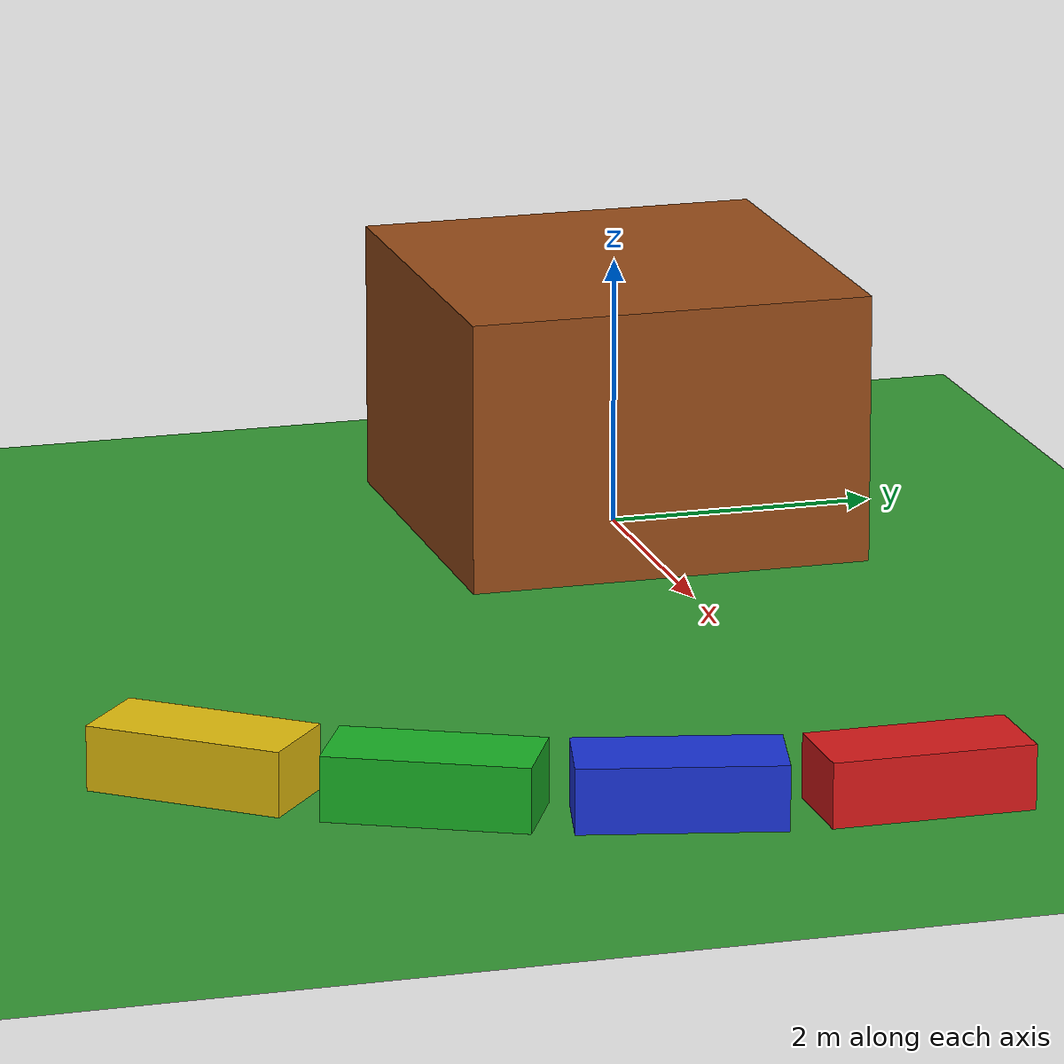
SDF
<?xml version="1.0" ?>
<sdf version="1.6">
  <world name="train_world">
    <physics name="1ms" type="ignored"><max_step_size>0.001</max_step_size><real_time_factor>1.0</real_time_factor></physics>
    <plugin filename="gz-sim-physics-system" name="gz::sim::systems::Physics"/>
    <plugin filename="gz-sim-user-commands-system" name="gz::sim::systems::UserCommands"/>
    <plugin filename="gz-sim-scene-broadcaster-system" name="gz::sim::systems::SceneBroadcaster"/>
    <light type="directional" name="sun"><cast_shadows>true</cast_shadows><pose>0 0 10 0 0 0</pose><diffuse>1 1 1 1</diffuse><specular>0.5 0.5 0.5 1</specular><direction>-0.5 0.1 -0.9</direction></light>
    <model name="ground"><static>true</static><link name="link">
      <collision name="collision"><geometry><plane><normal>0 0 1</normal><size>100 100</size></plane></geometry></collision>
      <visual name="visual"><geometry><plane><normal>0 0 1</normal><size>100 100</size></plane></geometry><material><ambient>0.2 0.6 0.2 1</ambient><diffuse>0.2 0.6 0.2 1</diffuse></material></visual>
    </link></model>
    <model name="center_block"><static>true</static><pose>0 0 1 0 0 0</pose><link name="link">
      <visual name="visual"><geometry><box><size>3 3 2</size></box></geometry><material><ambient>0.6 0.3 0.1 1</ambient><diffuse>0.6 0.3 0.1 1</diffuse></material></visual>
      <collision name="collision"><geometry><box><size>3 3 2</size></box></geometry></collision>
    </link></model>
    <model name="train">
      <pose>0 0 0 0 0 0</pose>
      <link name="locomotive">
        <pose>7.0000 -0.0000 0.3 0 0 1.5708</pose>
        <inertial><mass>5.0</mass><inertia><ixx>0.5</ixx><ixy>0</ixy><ixz>0</ixz><iyy>1.0</iyy><iyz>0</iyz><izz>1.0</izz></inertia></inertial>
        <collision name="col_locomotive"><geometry><box><size>1.4 0.65 0.45</size></box></geometry></collision>
        <visual name="vis_locomotive"><geometry><box><size>1.4 0.65 0.45</size></box></geometry><material><ambient>0.85 0.1 0.1 1</ambient><diffuse>0.85 0.1 0.1 1</diffuse></material></visual>
      </link>
      <link name="wagon1">
        <pose>6.8179 -1.5861 0.3 0 0 1.3422</pose>
        <inertial><mass>5.0</mass><inertia><ixx>0.5</ixx><ixy>0</ixy><ixz>0</ixz><iyy>1.0</iyy><iyz>0</iyz><izz>1.0</izz></inertia></inertial>
        <collision name="col_wagon1"><geometry><box><size>1.4 0.65 0.45</size></box></geometry></collision>
        <visual name="vis_wagon1"><geometry><box><size>1.4 0.65 0.45</size></box></geometry><material><ambient>0.1 0.2 0.85 1</ambient><diffuse>0.1 0.2 0.85 1</diffuse></material></visual>
      </link>
      <link name="wagon2">
        <pose>6.2812 -3.0897 0.3 0 0 1.1137</pose>
        <inertial><mass>5.0</mass><inertia><ixx>0.5</ixx><ixy>0</ixy><ixz>0</ixz><iyy>1.0</iyy><iyz>0</iyz><izz>1.0</izz></inertia></inertial>
        <collision name="col_wagon2"><geometry><box><size>1.4 0.65 0.45</size></box></geometry></collision>
        <visual name="vis_wagon2"><geometry><box><size>1.4 0.65 0.45</size></box></geometry><material><ambient>0.1 0.7 0.15 1</ambient><diffuse>0.1 0.7 0.15 1</diffuse></material></visual>
      </link>
      <link name="wagon3">
        <pose>5.4178 -4.4326 0.3 0 0 0.8851</pose>
        <inertial><mass>5.0</mass><inertia><ixx>0.5</ixx><ixy>0</ixy><ixz>0</ixz><iyy>1.0</iyy><iyz>0</iyz><izz>1.0</izz></inertia></inertial>
        <collision name="col_wagon3"><geometry><box><size>1.4 0.65 0.45</size></box></geometry></collision>
        <visual name="vis_wagon3"><geometry><box><size>1.4 0.65 0.45</size></box></geometry><material><ambient>0.9 0.75 0.05 1</ambient><diffuse>0.9 0.75 0.05 1</diffuse></material></visual>
      </link>
      <joint name="joint_locomotive_wagon1" type="fixed"><parent>locomotive</parent><child>wagon1</child></joint>
      <joint name="joint_wagon1_wagon2" type="fixed"><parent>wagon1</parent><child>wagon2</child></joint>
      <joint name="joint_wagon2_wagon3" type="fixed"><parent>wagon2</parent><child>wagon3</child></joint>
      <plugin filename="gz-sim-trajectory-follower-system" name="gz::sim::systems::TrajectoryFollower">
        <link_name>locomotive</link_name>
        <loop>true</loop>
        <force>800</force>
        <torque>800</torque>
        <range_accuracy>0.3</range_accuracy>
        <bearing_accuracy>0.05</bearing_accuracy>
        <waypoints>
          <waypoint>7.0000 0.0000</waypoint>
          <waypoint>6.9784 0.5492</waypoint>
          <waypoint>6.9138 1.0950</waypoint>
          <waypoint>6.8066 1.6341</waypoint>
          <waypoint>6.6574 2.1631</waypoint>
          <waypoint>6.4672 2.6788</waypoint>
          <waypoint>6.2370 3.1779</waypoint>
          <waypoint>5.9685 3.6575</waypoint>
          <waypoint>5.6631 4.1145</waypoint>
          <waypoint>5.3228 4.5461</waypoint>
          <waypoint>4.9497 4.9497</waypoint>
          <waypoint>4.5461 5.3228</waypoint>
          <waypoint>4.1145 5.6631</waypoint>
          <waypoint>3.6575 5.9685</waypoint>
          <waypoint>3.1779 6.2370</waypoint>
          <waypoint>2.6788 6.4672</waypoint>
          <waypoint>2.1631 6.6574</waypoint>
          <waypoint>1.6341 6.8066</waypoint>
          <waypoint>1.0950 6.9138</waypoint>
          <waypoint>0.5492 6.9784</waypoint>
          <waypoint>0.0000 7.0000</waypoint>
          <waypoint>-0.5492 6.9784</waypoint>
          <waypoint>-1.0950 6.9138</waypoint>
          <waypoint>-1.6341 6.8066</waypoint>
          <waypoint>-2.1631 6.6574</waypoint>
          <waypoint>-2.6788 6.4672</waypoint>
          <waypoint>-3.1779 6.2370</waypoint>
          <waypoint>-3.6575 5.9685</waypoint>
          <waypoint>-4.1145 5.6631</waypoint>
          <waypoint>-4.5461 5.3228</waypoint>
          <waypoint>-4.9497 4.9497</waypoint>
          <waypoint>-5.3228 4.5461</waypoint>
          <waypoint>-5.6631 4.1145</waypoint>
          <waypoint>-5.9685 3.6575</waypoint>
          <waypoint>-6.2370 3.1779</waypoint>
          <waypoint>-6.4672 2.6788</waypoint>
          <waypoint>-6.6574 2.1631</waypoint>
          <waypoint>-6.8066 1.6341</waypoint>
          <waypoint>-6.9138 1.0950</waypoint>
          <waypoint>-6.9784 0.5492</waypoint>
          <waypoint>-7.0000 0.0000</waypoint>
          <waypoint>-6.9784 -0.5492</waypoint>
          <waypoint>-6.9138 -1.0950</waypoint>
          <waypoint>-6.8066 -1.6341</waypoint>
          <waypoint>-6.6574 -2.1631</waypoint>
          <waypoint>-6.4672 -2.6788</waypoint>
          <waypoint>-6.2370 -3.1779</waypoint>
          <waypoint>-5.9685 -3.6575</waypoint>
          <waypoint>-5.6631 -4.1145</waypoint>
          <waypoint>-5.3228 -4.5461</waypoint>
          <waypoint>-4.9497 -4.9497</waypoint>
          <waypoint>-4.5461 -5.3228</waypoint>
          <waypoint>-4.1145 -5.6631</waypoint>
          <waypoint>-3.6575 -5.9685</waypoint>
          <waypoint>-3.1779 -6.2370</waypoint>
          <waypoint>-2.6788 -6.4672</waypoint>
          <waypoint>-2.1631 -6.6574</waypoint>
          <waypoint>-1.6341 -6.8066</waypoint>
          <waypoint>-1.0950 -6.9138</waypoint>
          <waypoint>-0.5492 -6.9784</waypoint>
          <waypoint>-0.0000 -7.0000</waypoint>
          <waypoint>0.5492 -6.9784</waypoint>
          <waypoint>1.0950 -6.9138</waypoint>
          <waypoint>1.6341 -6.8066</waypoint>
          <waypoint>2.1631 -6.6574</waypoint>
          <waypoint>2.6788 -6.4672</waypoint>
          <waypoint>3.1779 -6.2370</waypoint>
          <waypoint>3.6575 -5.9685</waypoint>
          <waypoint>4.1145 -5.6631</waypoint>
          <waypoint>4.5461 -5.3228</waypoint>
          <waypoint>4.9497 -4.9497</waypoint>
          <waypoint>5.3228 -4.5461</waypoint>
          <waypoint>5.6631 -4.1145</waypoint>
          <waypoint>5.9685 -3.6575</waypoint>
          <waypoint>6.2370 -3.1779</waypoint>
          <waypoint>6.4672 -2.6788</waypoint>
          <waypoint>6.6574 -2.1631</waypoint>
          <waypoint>6.8066 -1.6341</waypoint>
          <waypoint>6.9138 -1.0950</waypoint>
          <waypoint>6.9784 -0.5492</waypoint>
        </waypoints>
      </plugin>
    </model>
  </world>
</sdf>
